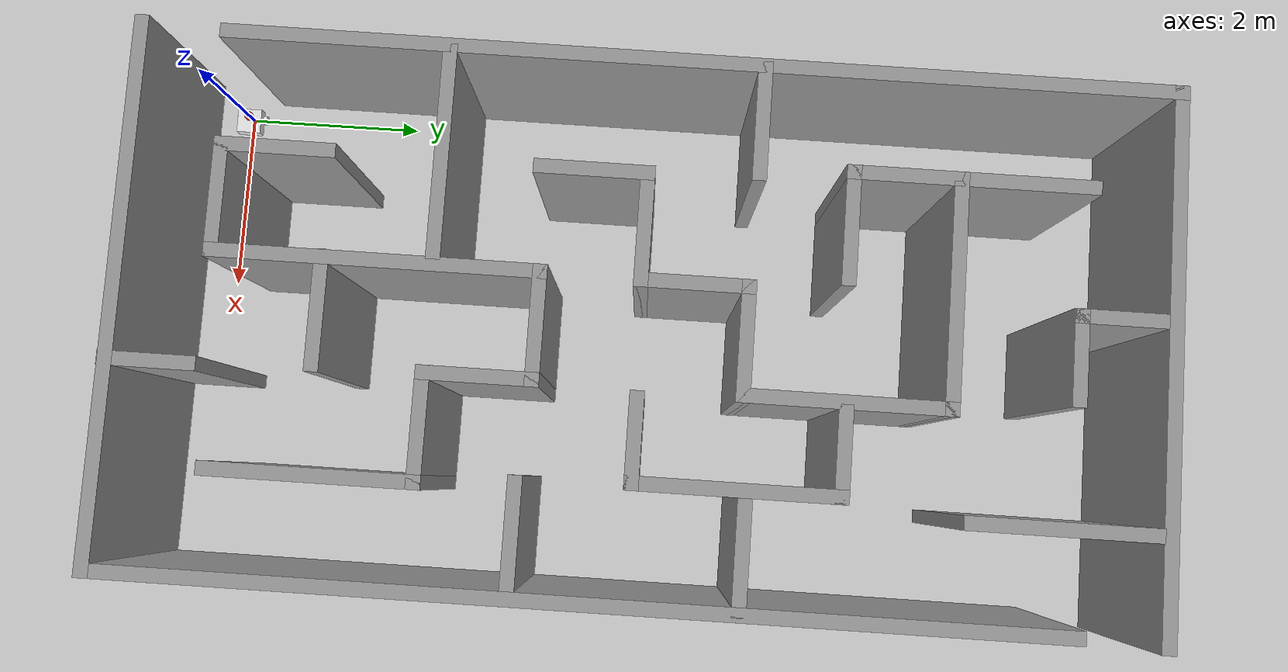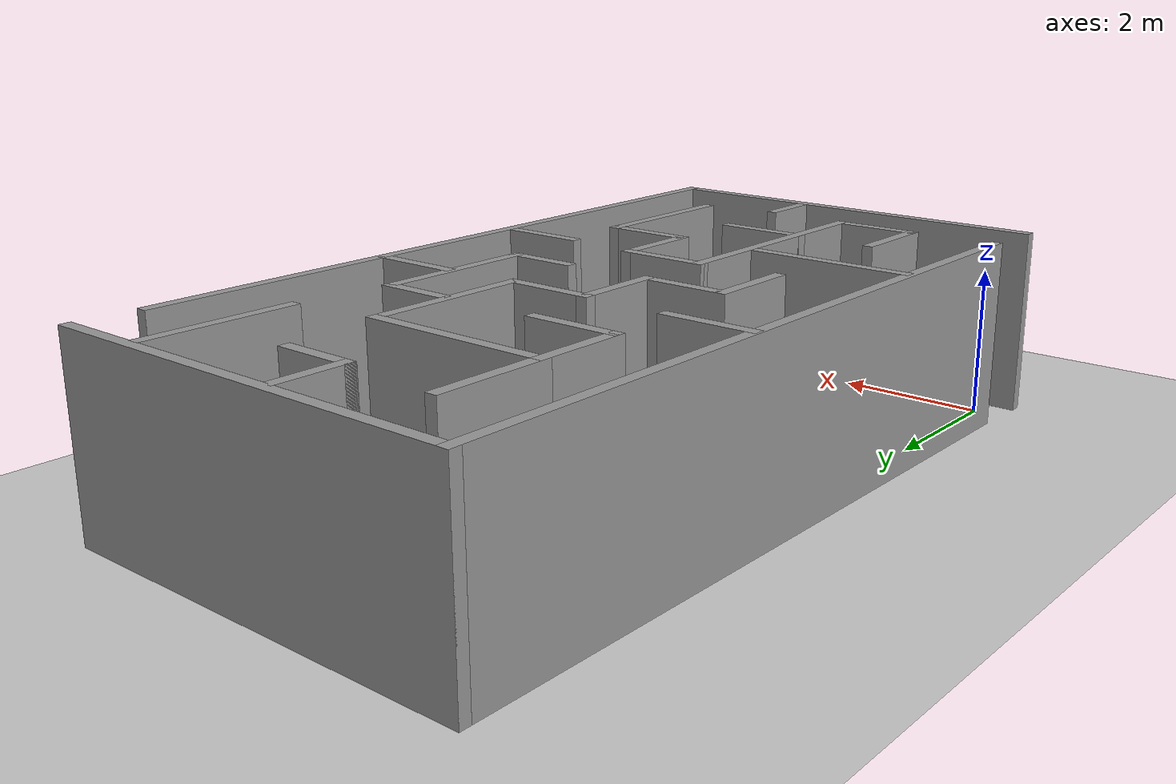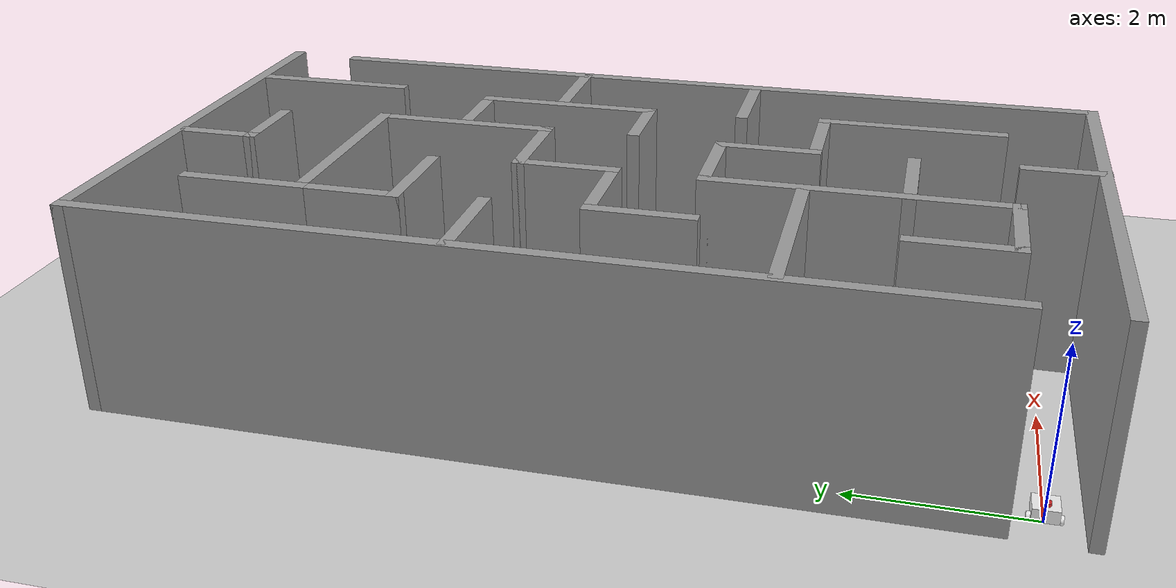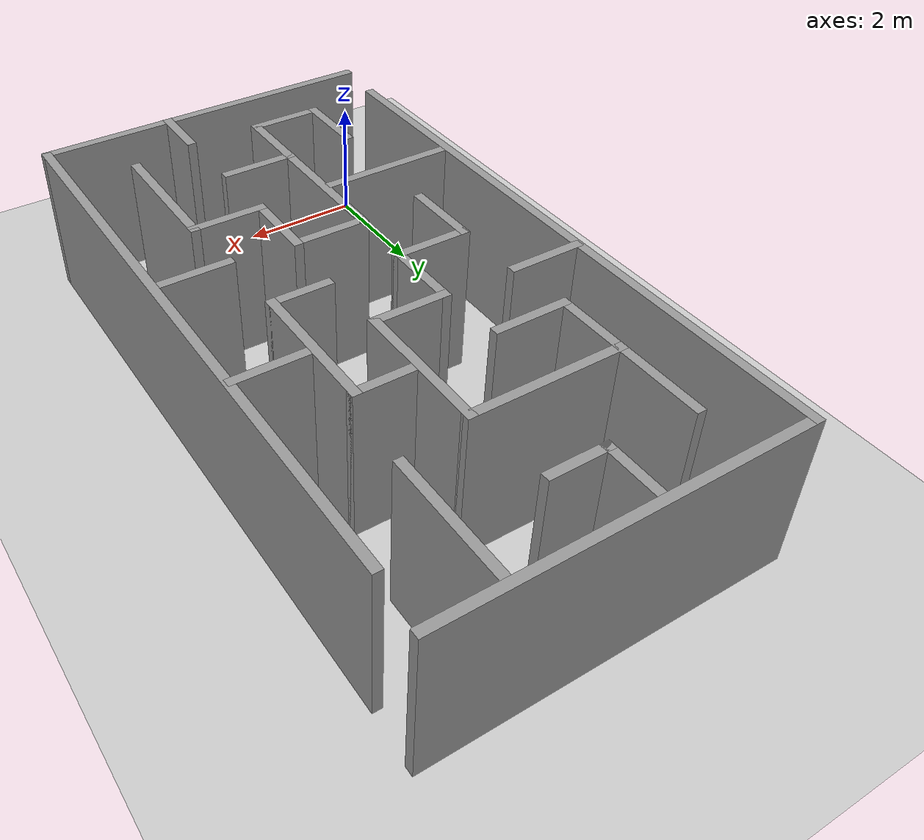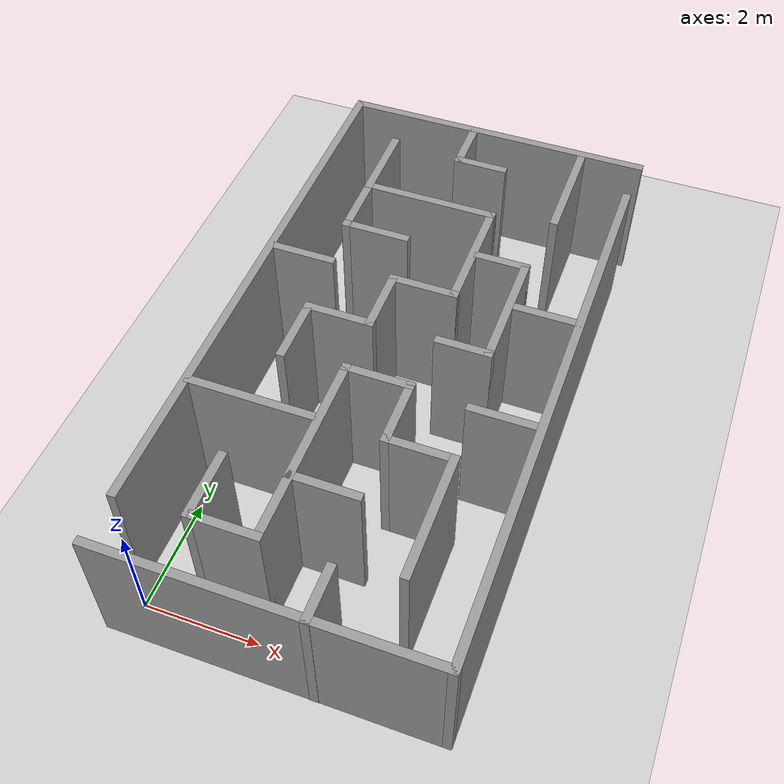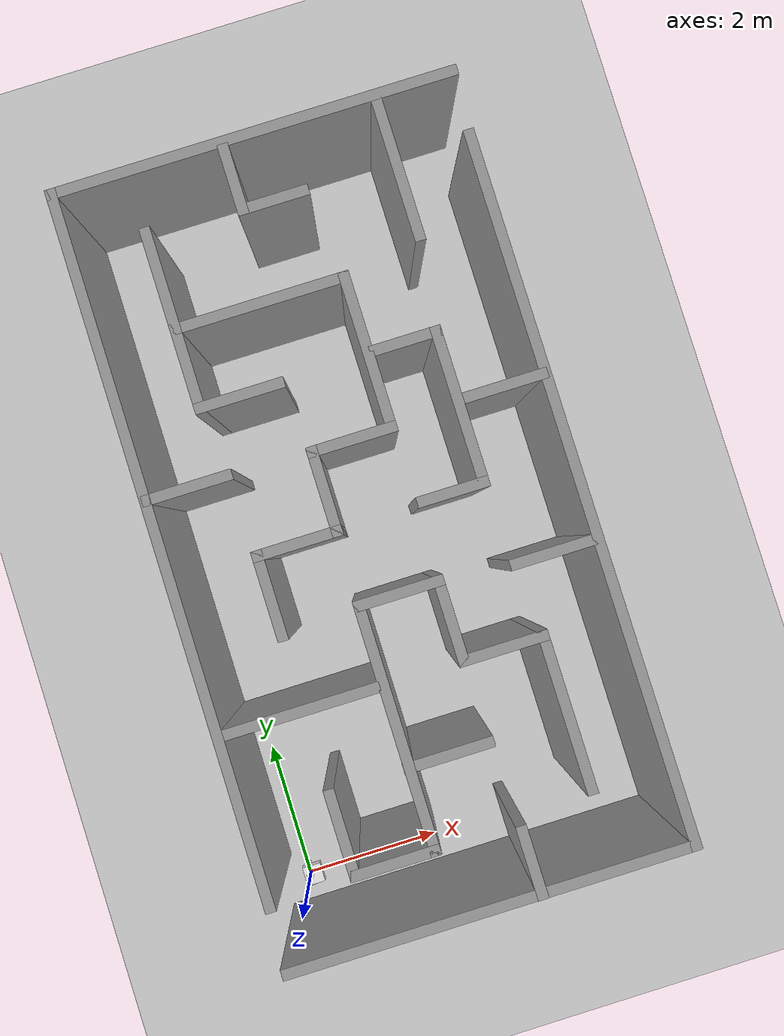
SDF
<sdf version="1.6">
 <world name="default">
  <light name="sun" type="directional">
   <pose>0 0 10 0 -0 0</pose>
   <diffuse>0.8 0.8 0.8 1</diffuse>
   <specular>0.2 0.2 0.2 1</specular>
   <attenuation>
    <range>1000</range>
    <constant>0.9</constant>
    <linear>0.01</linear>
    <quadratic>0.001</quadratic>
   </attenuation>
   <direction>-0.5 0.1 -0.9</direction>
  </light>
  <model name="ground_plane">
   <static>1</static>
   <link name="link">
    <collision name="collision">
     <geometry><plane><normal>0 0 1</normal><size>100 100</size></plane></geometry>
     <surface>
      <contact><collide_bitmask>65535</collide_bitmask></contact>
      <friction><ode><mu>100</mu><mu2>50</mu2></ode></friction>
     </surface>
    </collision>
    <visual name="visual">
     <cast_shadows>0</cast_shadows>
     <geometry><plane><normal>0 0 1</normal><size>100 100</size></plane></geometry>
     <material>
      <script><uri>file://media/materials/scripts/gazebo.material</uri><name>Gazebo/Grey</name></script>
     </material>
    </visual>
   </link>
  </model>
  <gravity>0 0 -9.8</gravity>
  <magnetic_field>6e-06 2.3e-05 -4.2e-05</magnetic_field>
  <atmosphere type="adiabatic"/>
  <physics name="default_physics" default="0" type="ode">
   <max_step_size>0.001</max_step_size>
   <real_time_factor>1</real_time_factor>
   <real_time_update_rate>1000</real_time_update_rate>
  </physics>
  <scene><ambient>0.4 0.4 0.4 1</ambient><background>0.7 0.7 0.7 1</background><shadows>1</shadows></scene>
  <spherical_coordinates>
   <surface_model>EARTH_WGS84</surface_model>
   <latitude_deg>0</latitude_deg>
   <longitude_deg>0</longitude_deg>
   <elevation>0</elevation>
   <heading_deg>0</heading_deg>
  </spherical_coordinates>
  <model name="test_robot">
   <link name="base_footprint">
    <inertial>
     <pose>0.045455 0 0.134091 0 -0 0</pose>
     <mass>1.1</mass>
     <inertia>
      <ixx>0.00939326</ixx>
      <ixy>0</ixy>
      <ixz>0.000454545</ixz>
      <iyy>0.00962053</iyy>
      <iyz>0</iyz>
      <izz>0.0134189</izz>
     </inertia>
    </inertial>
    <collision name="base_footprint_fixed_joint_lump__chassis_collision">
     <pose>0.05 0 0.125 0 -0 0</pose>
     <geometry><box><size>0.28 0.28 0.15</size></box></geometry>
    </collision>
    <collision name="base_footprint_fixed_joint_lump__laser_frame_collision_1">
     <pose>0 0 0.225 0 -0 0</pose>
     <geometry><cylinder><length>0.04</length><radius>0.05</radius></cylinder></geometry>
    </collision>
    <visual name="base_footprint_fixed_joint_lump__chassis_visual">
     <pose>0.05 0 0.125 0 -0 0</pose>
     <geometry><box><size>0.28 0.28 0.15</size></box></geometry>
     <material>
      <script><name>Gazebo/White</name><uri>file://media/materials/scripts/gazebo.material</uri></script>
     </material>
    </visual>
    <visual name="base_footprint_fixed_joint_lump__laser_frame_visual_1">
     <pose>0 0 0.225 0 -0 0</pose>
     <geometry><cylinder><length>0.04</length><radius>0.05</radius></cylinder></geometry>
     <material>
      <script><name>Gazebo/Red</name><uri>file://media/materials/scripts/gazebo.material</uri></script>
     </material>
    </visual>
    <sensor name="laser" type="ray">
     <visualize>1</visualize>
     <update_rate>10</update_rate>
     <ray>
      <scan>
       <horizontal>
        <samples>360</samples>
        <min_angle>-3.14</min_angle>
        <max_angle>3.14</max_angle>
        <resolution>1</resolution>
       </horizontal>
       <vertical><samples>1</samples><min_angle>0</min_angle><max_angle>0</max_angle></vertical>
      </scan>
      <range><min>0.3</min><max>12</max></range>
      <noise><type>gaussian</type><mean>0.005</mean><stddev>0.002</stddev></noise>
     </ray>
     <plugin name="sensor_plugin" filename="libgazebo_ros_laser.so">
      <topicName>/scan</topicName>
      <frameName>laser_frame</frameName>
      <robotNamespace>/</robotNamespace>
     </plugin>
     <pose>0 0 0.225 0 -0 0</pose>
    </sensor>
   </link>
   <link name="caster_wheel">
    <pose>0.14 0 0.05 0 -0 0</pose>
    <inertial>
     <mass>0.1</mass>
     <inertia><ixx>0.0001</ixx><ixy>0</ixy><ixz>0</ixz><iyy>0.0001</iyy><iyz>0</iyz><izz>0.0001</izz></inertia>
    </inertial>
    <collision name="caster_wheel_collision">
     <geometry><sphere><radius>0.05</radius></sphere></geometry>
    </collision>
    <visual name="caster_wheel_visual">
     <geometry><sphere><radius>0.05</radius></sphere></geometry>
     <material>
      <script><name>Gazebo/White</name><uri>file://media/materials/scripts/gazebo.material</uri></script>
     </material>
    </visual>
   </link>
   <joint name="caster_wheel_joint" type="revolute">
    <child>caster_wheel</child>
    <parent>base_footprint</parent>
    <axis>
     <xyz>0 1 0</xyz>
     <limit><lower>-1e+16</lower><upper>1e+16</upper></limit>
     <dynamics>
      <damping>0.001</damping>
      <friction>0</friction>
      <spring_reference>0</spring_reference>
      <spring_stiffness>0</spring_stiffness>
     </dynamics>
     <use_parent_model_frame>0</use_parent_model_frame>
    </axis>
   </joint>
   <link name="left_wheel">
    <pose>0 0.16 0.05 -1.5708 0 0</pose>
    <inertial>
     <mass>1.5</mass>
     <inertia><ixx>0.00125</ixx><ixy>0</ixy><ixz>0</ixz><iyy>0.00125</iyy><iyz>0</iyz><izz>0.001875</izz></inertia>
    </inertial>
    <collision name="left_wheel_collision">
     <geometry><cylinder><length>0.04</length><radius>0.05</radius></cylinder></geometry>
    </collision>
    <visual name="left_wheel_visual">
     <geometry><cylinder><length>0.04</length><radius>0.05</radius></cylinder></geometry>
     <material>
      <script><name>Gazebo/White</name><uri>file://media/materials/scripts/gazebo.material</uri></script>
     </material>
    </visual>
   </link>
   <joint name="left_wheel_joint" type="revolute">
    <child>left_wheel</child>
    <parent>base_footprint</parent>
    <axis>
     <xyz>0 0 1</xyz>
     <limit><lower>-1e+16</lower><upper>1e+16</upper></limit>
     <dynamics><spring_reference>0</spring_reference><spring_stiffness>0</spring_stiffness></dynamics>
     <use_parent_model_frame>0</use_parent_model_frame>
    </axis>
   </joint>
   <link name="right_wheel">
    <pose>0 -0.16 0.05 1.5708 -0 0</pose>
    <inertial>
     <mass>1.5</mass>
     <inertia><ixx>0.00125</ixx><ixy>0</ixy><ixz>0</ixz><iyy>0.00125</iyy><iyz>0</iyz><izz>0.001875</izz></inertia>
    </inertial>
    <collision name="right_wheel_collision">
     <geometry><cylinder><length>0.04</length><radius>0.05</radius></cylinder></geometry>
    </collision>
    <visual name="right_wheel_visual">
     <geometry><cylinder><length>0.04</length><radius>0.05</radius></cylinder></geometry>
     <material>
      <script><name>Gazebo/White</name><uri>file://media/materials/scripts/gazebo.material</uri></script>
     </material>
    </visual>
   </link>
   <joint name="right_wheel_joint" type="revolute">
    <child>right_wheel</child>
    <parent>base_footprint</parent>
    <axis>
     <xyz>0 0 -1</xyz>
     <limit><lower>-1e+16</lower><upper>1e+16</upper></limit>
     <dynamics><spring_reference>0</spring_reference><spring_stiffness>0</spring_stiffness></dynamics>
     <use_parent_model_frame>0</use_parent_model_frame>
    </axis>
   </joint>
   <static>0</static>
   <plugin name="diff_drive" filename="libgazebo_ros_diff_drive.so">
    <legacyMode>1</legacyMode>
    <rosDebugLevel>Debug</rosDebugLevel>
    <publishWheelTF>0</publishWheelTF>
    <robotNamespace>/</robotNamespace>
    <publishTf>1</publishTf>
    <publishWheelJointState>0</publishWheelJointState>
    <alwaysOn>1</alwaysOn>
    <updateRate>100.0</updateRate>
    <leftJoint>left_wheel_joint</leftJoint>
    <rightJoint>right_wheel_joint</rightJoint>
    <wheelSeparation>0.3</wheelSeparation>
    <wheelDiameter>0.1</wheelDiameter>
    <broadcastTF>1</broadcastTF>
    <wheelTorque>10</wheelTorque>
    <wheelAcceleration>0.5</wheelAcceleration>
    <commandTopic>cmd_vel</commandTopic>
    <odometryFrame>odom</odometryFrame>
    <odometryTopic>odom</odometryTopic>
    <robotBaseFrame>base_footprint</robotBaseFrame>
   </plugin>
   <pose>0.00377 -2.3e-05 0 0 1.3e-05 -0.000431</pose>
  </model>
  <model name="Maze">
   <pose>2.5 4.9 0 0 -0 1.57</pose>
   <link name="Wall_1">
    <collision name="Wall_1_Collision">
     <geometry><box><size>10 0.15 2.5</size></box></geometry>
     <pose>0 0 1.25 0 -0 0</pose>
    </collision>
    <visual name="Wall_1_Visual">
     <pose>0 0 1.25 0 -0 0</pose>
     <geometry><box><size>10 0.15 2.5</size></box></geometry>
     <material>
      <script><uri>file://media/materials/scripts/gazebo.material</uri><name>Gazebo/Grey</name></script>
      <ambient>1 1 1 1</ambient>
     </material>
     <meta><layer>0</layer></meta>
    </visual>
    <pose>0.448658 2.7832 0 0 -0 0</pose>
   </link>
   <link name="Wall_10">
    <collision name="Wall_10_Collision">
     <geometry><box><size>1.25 0.15 2.5</size></box></geometry>
     <pose>0 0 1.25 0 -0 0</pose>
    </collision>
    <visual name="Wall_10_Visual">
     <pose>0 0 1.25 0 -0 0</pose>
     <geometry><box><size>1.25 0.15 2.5</size></box></geometry>
     <material>
      <script><uri>file://media/materials/scripts/gazebo.material</uri><name>Gazebo/Grey</name></script>
      <ambient>1 1 1 1</ambient>
     </material>
     <meta><layer>0</layer></meta>
    </visual>
    <pose>-1.07048 -0.053081 0 0 -0 -1.5708</pose>
   </link>
   <link name="Wall_11">
    <collision name="Wall_11_Collision">
     <geometry><box><size>1.25 0.15 2.5</size></box></geometry>
     <pose>0 0 1.25 0 -0 0</pose>
    </collision>
    <visual name="Wall_11_Visual">
     <pose>0 0 1.25 0 -0 0</pose>
     <geometry><box><size>1.25 0.15 2.5</size></box></geometry>
     <material>
      <script><uri>file://media/materials/scripts/gazebo.material</uri><name>Gazebo/Grey</name></script>
      <ambient>1 1 1 1</ambient>
     </material>
     <meta><layer>0</layer></meta>
    </visual>
    <pose>-1.62048 -0.603081 0 0 -0 3.14159</pose>
   </link>
   <link name="Wall_12">
    <collision name="Wall_12_Collision">
     <geometry><box><size>1.25 0.15 2.5</size></box></geometry>
     <pose>0 0 1.25 0 -0 0</pose>
    </collision>
    <visual name="Wall_12_Visual">
     <pose>0 0 1.25 0 -0 0</pose>
     <geometry><box><size>1.25 0.15 2.5</size></box></geometry>
     <material>
      <script><uri>file://media/materials/scripts/gazebo.material</uri><name>Gazebo/Grey</name></script>
      <ambient>1 1 1 1</ambient>
     </material>
     <meta><layer>0</layer></meta>
    </visual>
    <pose>-2.17048 -1.15308 0 0 -0 -1.5708</pose>
   </link>
   <link name="Wall_13">
    <collision name="Wall_13_Collision">
     <geometry><box><size>2.25 0.15 2.5</size></box></geometry>
     <pose>0 0 1.25 0 -0 0</pose>
    </collision>
    <visual name="Wall_13_Visual">
     <pose>0 0 1.25 0 -0 0</pose>
     <geometry><box><size>2.25 0.15 2.5</size></box></geometry>
     <material>
      <script><uri>file://media/materials/scripts/gazebo.material</uri><name>Gazebo/Grey</name></script>
      <ambient>1 1 1 1</ambient>
     </material>
     <meta><layer>0</layer></meta>
    </visual>
    <pose>-3.22048 -1.70308 0 0 -0 3.14159</pose>
   </link>
   <link name="Wall_15">
    <collision name="Wall_15_Collision">
     <geometry><box><size>2.25 0.15 2.5</size></box></geometry>
     <pose>0 0 1.25 0 -0 0</pose>
    </collision>
    <visual name="Wall_15_Visual">
     <pose>0 0 1.25 0 -0 0</pose>
     <geometry><box><size>2.25 0.15 2.5</size></box></geometry>
     <material>
      <script><uri>file://media/materials/scripts/gazebo.material</uri><name>Gazebo/Grey</name></script>
      <ambient>1 1 1 1</ambient>
     </material>
     <meta><layer>0</layer></meta>
    </visual>
    <pose>-2.16461 1.67356 0 0 -0 1.5708</pose>
   </link>
   <link name="Wall_17">
    <collision name="Wall_17_Collision">
     <geometry><box><size>1.25 0.15 2.5</size></box></geometry>
     <pose>0 0 1.25 0 -0 0</pose>
    </collision>
    <visual name="Wall_17_Visual">
     <pose>0 0 1.25 0 -0 0</pose>
     <geometry><box><size>1.25 0.15 2.5</size></box></geometry>
     <material>
      <script><uri>file://media/materials/scripts/gazebo.material</uri><name>Gazebo/Grey</name></script>
      <ambient>1 1 1 1</ambient>
     </material>
     <meta><layer>0</layer></meta>
    </visual>
    <pose>1.09006 2.20278 0 0 -0 -1.5708</pose>
   </link>
   <link name="Wall_19">
    <collision name="Wall_19_Collision">
     <geometry><box><size>1.25 0.15 2.5</size></box></geometry>
     <pose>0 0 1.25 0 -0 0</pose>
    </collision>
    <visual name="Wall_19_Visual">
     <pose>0 0 1.25 0 -0 0</pose>
     <geometry><box><size>1.25 0.15 2.5</size></box></geometry>
     <material>
      <script><uri>file://media/materials/scripts/gazebo.material</uri><name>Gazebo/Grey</name></script>
      <ambient>1 1 1 1</ambient>
     </material>
     <meta><layer>0</layer></meta>
    </visual>
    <pose>-0.595626 1.58171 0 0 -0 0</pose>
   </link>
   <link name="Wall_2">
    <collision name="Wall_2_Collision">
     <geometry><box><size>5.75 0.15 2.5</size></box></geometry>
     <pose>0 0 1.25 0 -0 0</pose>
    </collision>
    <visual name="Wall_2_Visual">
     <pose>0 0 1.25 0 -0 0</pose>
     <geometry><box><size>5.75 0.15 2.5</size></box></geometry>
     <material>
      <script><uri>file://media/materials/scripts/gazebo.material</uri><name>Gazebo/Grey</name></script>
      <ambient>1 1 1 1</ambient>
     </material>
     <meta><layer>0</layer></meta>
    </visual>
    <pose>5.37366 -0.016799 0 0 -0 -1.5708</pose>
   </link>
   <link name="Wall_20">
    <collision name="Wall_20_Collision">
     <geometry><box><size>1.25 0.15 2.5</size></box></geometry>
     <pose>0 0 1.25 0 -0 0</pose>
    </collision>
    <visual name="Wall_20_Visual">
     <pose>0 0 1.25 0 -0 0</pose>
     <geometry><box><size>1.25 0.15 2.5</size></box></geometry>
     <material>
      <script><uri>file://media/materials/scripts/gazebo.material</uri><name>Gazebo/Grey</name></script>
      <ambient>1 1 1 1</ambient>
     </material>
     <meta><layer>0</layer></meta>
    </visual>
    <pose>-0.045626 1.03171 0 0 -0 -1.5708</pose>
   </link>
   <link name="Wall_21">
    <collision name="Wall_21_Collision">
     <geometry><box><size>1.25 0.15 2.5</size></box></geometry>
     <pose>0 0 1.25 0 -0 0</pose>
    </collision>
    <visual name="Wall_21_Visual">
     <pose>0 0 1.25 0 -0 0</pose>
     <geometry><box><size>1.25 0.15 2.5</size></box></geometry>
     <material>
      <script><uri>file://media/materials/scripts/gazebo.material</uri><name>Gazebo/Grey</name></script>
      <ambient>1 1 1 1</ambient>
     </material>
     <meta><layer>0</layer></meta>
    </visual>
    <pose>0.504374 0.48171 0 0 -0 0</pose>
   </link>
   <link name="Wall_22">
    <collision name="Wall_22_Collision">
     <geometry><box><size>1.25 0.15 2.5</size></box></geometry>
     <pose>0 0 1.25 0 -0 0</pose>
    </collision>
    <visual name="Wall_22_Visual">
     <pose>0 0 1.25 0 -0 0</pose>
     <geometry><box><size>1.25 0.15 2.5</size></box></geometry>
     <material>
      <script><uri>file://media/materials/scripts/gazebo.material</uri><name>Gazebo/Grey</name></script>
      <ambient>1 1 1 1</ambient>
     </material>
     <meta><layer>0</layer></meta>
    </visual>
    <pose>1.05437 -0.06829 0 0 -0 -1.5708</pose>
   </link>
   <link name="Wall_23">
    <collision name="Wall_23_Collision">
     <geometry><box><size>2.25 0.15 2.5</size></box></geometry>
     <pose>0 0 1.25 0 -0 0</pose>
    </collision>
    <visual name="Wall_23_Visual">
     <pose>0 0 1.25 0 -0 0</pose>
     <geometry><box><size>2.25 0.15 2.5</size></box></geometry>
     <material>
      <script><uri>file://media/materials/scripts/gazebo.material</uri><name>Gazebo/Grey</name></script>
      <ambient>1 1 1 1</ambient>
     </material>
     <meta><layer>0</layer></meta>
    </visual>
    <pose>2.10437 -0.61829 0 0 -0 0</pose>
   </link>
   <link name="Wall_24">
    <collision name="Wall_24_Collision">
     <geometry><box><size>2.5 0.15 2.5</size></box></geometry>
     <pose>0 0 1.25 0 -0 0</pose>
    </collision>
    <visual name="Wall_24_Visual">
     <pose>0 0 1.25 0 -0 0</pose>
     <geometry><box><size>2.5 0.15 2.5</size></box></geometry>
     <material>
      <script><uri>file://media/materials/scripts/gazebo.material</uri><name>Gazebo/Grey</name></script>
      <ambient>1 1 1 1</ambient>
     </material>
     <meta><layer>0</layer></meta>
    </visual>
    <pose>3.15437 0.55671 0 0 -0 1.5708</pose>
   </link>
   <link name="Wall_25">
    <collision name="Wall_25_Collision">
     <geometry><box><size>1.25 0.15 2.5</size></box></geometry>
     <pose>0 0 1.25 0 -0 0</pose>
    </collision>
    <visual name="Wall_25_Visual">
     <pose>0 0 1.25 0 -0 0</pose>
     <geometry><box><size>1.25 0.15 2.5</size></box></geometry>
     <material>
      <script><uri>file://media/materials/scripts/gazebo.material</uri><name>Gazebo/Grey</name></script>
      <ambient>1 1 1 1</ambient>
     </material>
     <meta><layer>0</layer></meta>
    </visual>
    <pose>2.60437 1.73171 0 0 -0 3.14159</pose>
   </link>
   <link name="Wall_26">
    <collision name="Wall_26_Collision">
     <geometry><box><size>1.25 0.15 2.5</size></box></geometry>
     <pose>0 0 1.25 0 -0 0</pose>
    </collision>
    <visual name="Wall_26_Visual">
     <pose>0 0 1.25 0 -0 0</pose>
     <geometry><box><size>1.25 0.15 2.5</size></box></geometry>
     <material>
      <script><uri>file://media/materials/scripts/gazebo.material</uri><name>Gazebo/Grey</name></script>
      <ambient>1 1 1 1</ambient>
     </material>
     <meta><layer>0</layer></meta>
    </visual>
    <pose>2.05437 1.18171 0 0 -0 -1.5708</pose>
   </link>
   <link name="Wall_28">
    <collision name="Wall_28_Collision">
     <geometry><box><size>1.5 0.15 2.5</size></box></geometry>
     <pose>0 0 1.25 0 -0 0</pose>
    </collision>
    <visual name="Wall_28_Visual">
     <pose>0 0 1.25 0 -0 0</pose>
     <geometry><box><size>1.5 0.15 2.5</size></box></geometry>
     <material>
      <script><uri>file://media/materials/scripts/gazebo.material</uri><name>Gazebo/Grey</name></script>
      <ambient>1 1 1 1</ambient>
     </material>
     <meta><layer>0</layer></meta>
    </visual>
    <pose>3.82937 1.73171 0 0 -0 0</pose>
   </link>
   <link name="Wall_30">
    <collision name="Wall_30_Collision">
     <geometry><box><size>1 0.15 2.5</size></box></geometry>
     <pose>0 0 1.25 0 -0 0</pose>
    </collision>
    <visual name="Wall_30_Visual">
     <pose>0 0 1.25 0 -0 0</pose>
     <geometry><box><size>1 0.15 2.5</size></box></geometry>
     <material>
      <script><uri>file://media/materials/scripts/gazebo.material</uri><name>Gazebo/Grey</name></script>
      <ambient>1 1 1 1</ambient>
     </material>
     <meta><layer>0</layer></meta>
    </visual>
    <pose>-0.004969 -1.13981 0 0 -0 -1.5708</pose>
   </link>
   <link name="Wall_31">
    <collision name="Wall_31_Collision">
     <geometry><box><size>2.25 0.15 2.5</size></box></geometry>
     <pose>0 0 1.25 0 -0 0</pose>
    </collision>
    <visual name="Wall_31_Visual">
     <pose>0 0 1.25 0 -0 0</pose>
     <geometry><box><size>2.25 0.15 2.5</size></box></geometry>
     <material>
      <script><uri>file://media/materials/scripts/gazebo.material</uri><name>Gazebo/Grey</name></script>
      <ambient>1 1 1 1</ambient>
     </material>
     <meta><layer>0</layer></meta>
    </visual>
    <pose>1.04503 -1.56481 0 0 -0 0</pose>
   </link>
   <link name="Wall_32">
    <collision name="Wall_32_Collision">
     <geometry><box><size>1 0.15 2.5</size></box></geometry>
     <pose>0 0 1.25 0 -0 0</pose>
    </collision>
    <visual name="Wall_32_Visual">
     <pose>0 0 1.25 0 -0 0</pose>
     <geometry><box><size>1 0.15 2.5</size></box></geometry>
     <material>
      <script><uri>file://media/materials/scripts/gazebo.material</uri><name>Gazebo/Grey</name></script>
      <ambient>1 1 1 1</ambient>
     </material>
     <meta><layer>0</layer></meta>
    </visual>
    <pose>2.09503 -1.13981 0 0 -0 1.5708</pose>
   </link>
   <link name="Wall_34">
    <collision name="Wall_34_Collision">
     <geometry><box><size>2 0.15 2.5</size></box></geometry>
     <pose>0 0 1.25 0 -0 0</pose>
    </collision>
    <visual name="Wall_34_Visual">
     <pose>0 0 1.25 0 -0 0</pose>
     <geometry><box><size>2 0.15 2.5</size></box></geometry>
     <material>
      <script><uri>file://media/materials/scripts/gazebo.material</uri><name>Gazebo/Grey</name></script>
      <ambient>1 1 1 1</ambient>
     </material>
     <meta><layer>0</layer></meta>
    </visual>
    <pose>4.31158 -1.7338 0 0 -0 0</pose>
   </link>
   <link name="Wall_36">
    <collision name="Wall_36_Collision">
     <geometry><box><size>1 0.15 2.5</size></box></geometry>
     <pose>0 0 1.25 0 -0 0</pose>
    </collision>
    <visual name="Wall_36_Visual">
     <pose>0 0 1.25 0 -0 0</pose>
     <geometry><box><size>1 0.15 2.5</size></box></geometry>
     <material>
      <script><uri>file://media/materials/scripts/gazebo.material</uri><name>Gazebo/Grey</name></script>
      <ambient>1 1 1 1</ambient>
     </material>
     <meta><layer>0</layer></meta>
    </visual>
    <pose>4.42078 -0.016054 0 0 -0 1.5708</pose>
   </link>
   <link name="Wall_37">
    <collision name="Wall_37_Collision">
     <geometry><box><size>1 0.15 2.5</size></box></geometry>
     <pose>0 0 1.25 0 -0 0</pose>
    </collision>
    <visual name="Wall_37_Visual">
     <pose>0 0 1.25 0 -0 0</pose>
     <geometry><box><size>1 0.15 2.5</size></box></geometry>
     <material>
      <script><uri>file://media/materials/scripts/gazebo.material</uri><name>Gazebo/Grey</name></script>
      <ambient>1 1 1 1</ambient>
     </material>
     <meta><layer>0</layer></meta>
    </visual>
    <pose>4.84578 0.408946 0 0 -0 0</pose>
   </link>
   <link name="Wall_39">
    <collision name="Wall_39_Collision">
     <geometry><box><size>1 0.15 2.5</size></box></geometry>
     <pose>0 0 1.25 0 -0 0</pose>
    </collision>
    <visual name="Wall_39_Visual">
     <pose>0 0 1.25 0 -0 0</pose>
     <geometry><box><size>1 0.15 2.5</size></box></geometry>
     <material>
      <script><uri>file://media/materials/scripts/gazebo.material</uri><name>Gazebo/Grey</name></script>
      <ambient>1 1 1 1</ambient>
     </material>
     <meta><layer>0</layer></meta>
    </visual>
    <pose>-4.94866 -0.669185 0 0 -0 0</pose>
   </link>
   <link name="Wall_4">
    <collision name="Wall_4_Collision">
     <geometry><box><size>10 0.15 2.5</size></box></geometry>
     <pose>0 0 1.25 0 -0 0</pose>
    </collision>
    <visual name="Wall_4_Visual">
     <pose>0 0 1.25 0 -0 0</pose>
     <geometry><box><size>10 0.15 2.5</size></box></geometry>
     <material>
      <script><uri>file://media/materials/scripts/gazebo.material</uri><name>Gazebo/Grey</name></script>
      <ambient>1 1 1 1</ambient>
     </material>
     <meta><layer>0</layer></meta>
    </visual>
    <pose>-0.443388 -2.7832 0 0 -0 3.14159</pose>
   </link>
   <link name="Wall_41">
    <collision name="Wall_41_Collision">
     <geometry><box><size>1.25 0.15 2.5</size></box></geometry>
     <pose>0 0 1.25 0 -0 0</pose>
    </collision>
    <visual name="Wall_41_Visual">
     <pose>0 0 1.25 0 -0 0</pose>
     <geometry><box><size>1.25 0.15 2.5</size></box></geometry>
     <material>
      <script><uri>file://media/materials/scripts/gazebo.material</uri><name>Gazebo/Grey</name></script>
      <ambient>1 1 1 1</ambient>
     </material>
     <meta><layer>0</layer></meta>
    </visual>
    <pose>-3.29006 -0.048111 0 0 -0 -1.5708</pose>
   </link>
   <link name="Wall_43">
    <collision name="Wall_43_Collision">
     <geometry><box><size>1.25 0.15 2.5</size></box></geometry>
     <pose>0 0 1.25 0 -0 0</pose>
    </collision>
    <visual name="Wall_43_Visual">
     <pose>0 0 1.25 0 -0 0</pose>
     <geometry><box><size>1.25 0.15 2.5</size></box></geometry>
     <material>
      <script><uri>file://media/materials/scripts/gazebo.material</uri><name>Gazebo/Grey</name></script>
      <ambient>1 1 1 1</ambient>
     </material>
     <meta><layer>0</layer></meta>
    </visual>
    <pose>-1.16083 -2.18757 0 0 -0 1.5708</pose>
   </link>
   <link name="Wall_45">
    <collision name="Wall_45_Collision">
     <geometry><box><size>1.25 0.15 2.5</size></box></geometry>
     <pose>0 0 1.25 0 -0 0</pose>
    </collision>
    <visual name="Wall_45_Visual">
     <pose>0 0 1.25 0 -0 0</pose>
     <geometry><box><size>1.25 0.15 2.5</size></box></geometry>
     <material>
      <script><uri>file://media/materials/scripts/gazebo.material</uri><name>Gazebo/Grey</name></script>
      <ambient>1 1 1 1</ambient>
     </material>
     <meta><layer>0</layer></meta>
    </visual>
    <pose>1.13569 -2.18757 0 0 -0 1.5708</pose>
   </link>
   <link name="Wall_5">
    <collision name="Wall_5_Collision">
     <geometry><box><size>5.75 0.15 2.5</size></box></geometry>
     <pose>0 0 1.25 0 -0 0</pose>
    </collision>
    <visual name="Wall_5_Visual">
     <pose>0 0 1.25 0 -0 0</pose>
     <geometry><box><size>5.75 0.15 2.5</size></box></geometry>
     <material>
      <script><uri>file://media/materials/scripts/gazebo.material</uri><name>Gazebo/Grey</name></script>
      <ambient>1 1 1 1</ambient>
     </material>
     <meta><layer>0</layer></meta>
    </visual>
    <pose>-5.36839 0.016799 0 0 -0 1.5708</pose>
   </link>
   <link name="Wall_7">
    <collision name="Wall_7_Collision">
     <geometry><box><size>1.25 0.15 2.5</size></box></geometry>
     <pose>0 0 1.25 0 -0 0</pose>
    </collision>
    <visual name="Wall_7_Visual">
     <pose>0 0 1.25 0 -0 0</pose>
     <geometry><box><size>1.25 0.15 2.5</size></box></geometry>
     <material>
      <script><uri>file://media/materials/scripts/gazebo.material</uri><name>Gazebo/Grey</name></script>
      <ambient>1 1 1 1</ambient>
     </material>
     <meta><layer>0</layer></meta>
    </visual>
    <pose>-3.87048 1.59692 0 0 -0 3.14159</pose>
   </link>
   <link name="Wall_8">
    <collision name="Wall_8_Collision">
     <geometry><box><size>1.25 0.15 2.5</size></box></geometry>
     <pose>0 0 1.25 0 -0 0</pose>
    </collision>
    <visual name="Wall_8_Visual">
     <pose>0 0 1.25 0 -0 0</pose>
     <geometry><box><size>1.25 0.15 2.5</size></box></geometry>
     <material>
      <script><uri>file://media/materials/scripts/gazebo.material</uri><name>Gazebo/Grey</name></script>
      <ambient>1 1 1 1</ambient>
     </material>
     <meta><layer>0</layer></meta>
    </visual>
    <pose>-4.42048 1.04692 0 0 -0 -1.5708</pose>
   </link>
   <link name="Wall_9">
    <collision name="Wall_9_Collision">
     <geometry><box><size>3.5 0.15 2.5</size></box></geometry>
     <pose>0 0 1.25 0 -0 0</pose>
    </collision>
    <visual name="Wall_9_Visual">
     <pose>0 0 1.25 0 -0 0</pose>
     <geometry><box><size>3.5 0.15 2.5</size></box></geometry>
     <material>
      <script><uri>file://media/materials/scripts/gazebo.material</uri><name>Gazebo/Grey</name></script>
      <ambient>1 1 1 1</ambient>
     </material>
     <meta><layer>0</layer></meta>
    </visual>
    <pose>-2.74548 0.496919 0 0 -0 0</pose>
   </link>
   <static>1</static>
  </model>
 </world>
</sdf>
